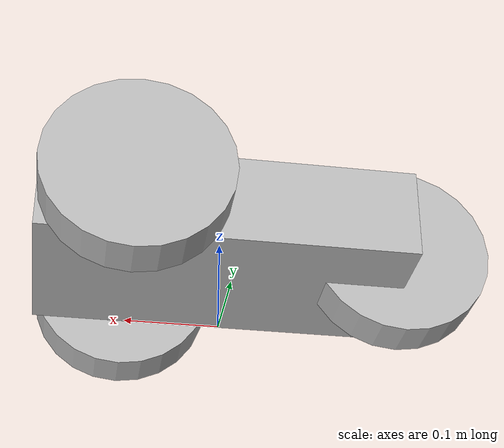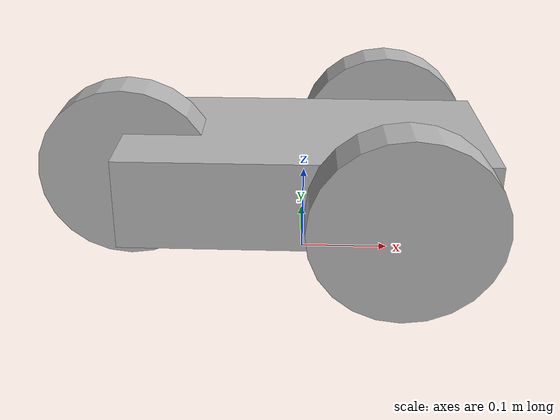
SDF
<?xml version='1.0'?>
<sdf version='1.4'>
    <model name="my_robot">
        <static>false</static>
        <link name='chassis'>
            <pose>0 0 .1 0 0 0</pose>

            <collision name='collision'>
                <geometry>
                    <box>
                        <size>.4 .2 .1</size>
                    </box>
                </geometry>
            </collision>

            <visual name='visual'>
                <geometry>
                    <box>
                        <size>.4 .2 .1</size>
                    </box>
                </geometry>
            </visual>

        </link>
        <link name="front_wheel">
            <pose>-0.2 0 0.1 0 1.5707 1.5707</pose>
            <collision name="collision">
                <geometry>
                    <cylinder>
                        <radius>.1</radius>
                        <length>.05</length>
                    </cylinder>
                </geometry>
                <surface>
                    <friction>
                        <torsional>
                            <coefficient>1</coefficient>
                            <use_patch_radius>true</use_patch_radius>
                            <patch_radius>.05</patch_radius>
                        </torsional>
                    </friction>
                </surface>

            </collision>
            <visual name="visual">
                <geometry>
                    <cylinder>
                        <radius>.1</radius>
                        <length>.05</length>
                    </cylinder>
                </geometry>
            </visual>

        </link>
        <link name="left_wheel">
            <pose>0.1 0.13 0.1 0 1.5707 1.5707</pose>
            <collision name="collision">
                <geometry>
                    <cylinder>
                        <radius>.1</radius>
                        <length>.05</length>
                    </cylinder>
                </geometry>
            </collision>
            <visual name="visual">
                <geometry>
                    <cylinder>
                        <radius>.1</radius>
                        <length>.05</length>
                    </cylinder>
                </geometry>
            </visual>
        </link>
        <link name="right_wheel">
            <pose>0.1 -0.13 0.1 0 1.5707 1.5707</pose>
            <collision name="collision">
                <geometry>
                    <cylinder>
                        <radius>.1</radius>
                        <length>.05</length>
                    </cylinder>
                </geometry>
            </collision>
            <visual name="visual">
                <geometry>
                    <cylinder>
                        <radius>.1</radius>
                        <length>.05</length>
                    </cylinder>
                </geometry>
            </visual>
        </link>
        <joint type="revolute" name="front_wheel_hinge">
            <pose>0 0 0 0 0 0</pose>
            <child>front_wheel</child>
            <parent>chassis</parent>
            <axis>
                <xyz>0 0 1</xyz>
            </axis>
        </joint>
        <joint type="revolute" name="left_wheel_hinge">
            <pose>0 0 -0.03 0 0 0</pose>
            <child>left_wheel</child>
            <parent>chassis</parent>
            <axis>
                <xyz>0 1 0</xyz>
            </axis>
        </joint>
        <joint type="revolute" name="right_wheel_hinge">
            <pose>0 0 0.03 0 0 0</pose>
            <child>right_wheel</child>
            <parent>chassis</parent>
            <axis>
                <xyz>0 1 0</xyz>
            </axis>
        </joint>
    </model>
</sdf>
